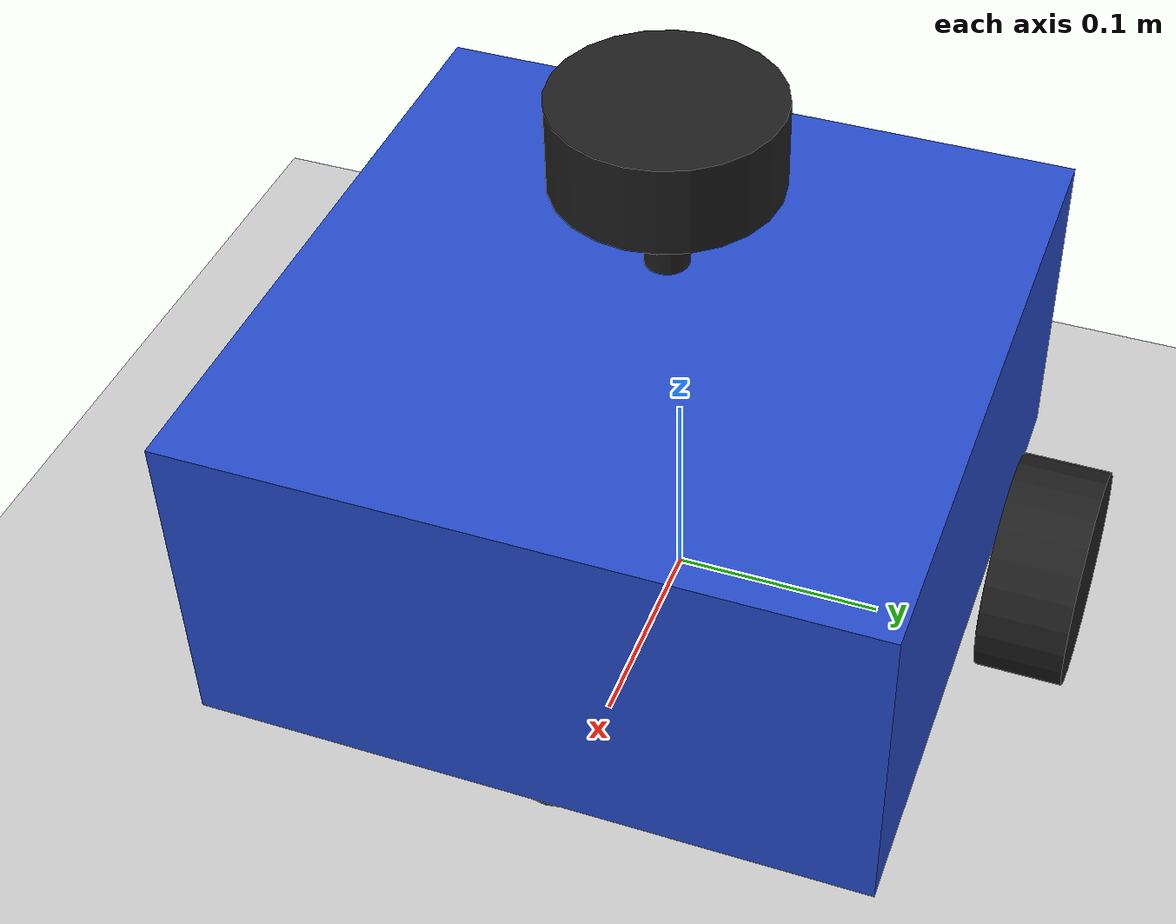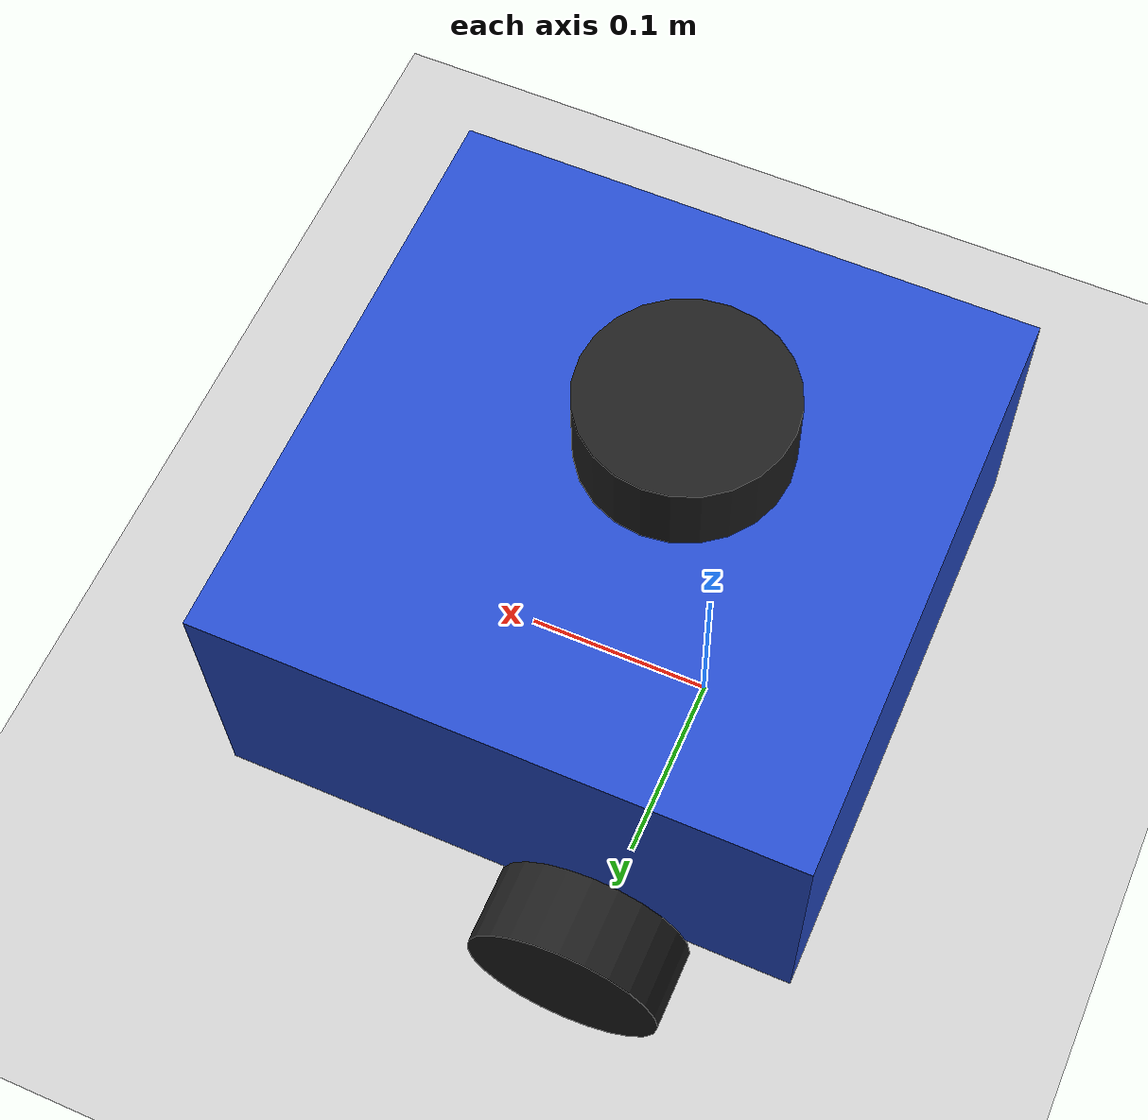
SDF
<sdf version="1.7">
 <world name="default">
  <model name="ground_plane">
   <static>1</static>
   <link name="link">
    <collision name="collision">
     <geometry><plane><normal>0 0 1</normal><size>100 100</size></plane></geometry>
     <surface><friction><ode><mu>100</mu><mu2>50</mu2></ode></friction></surface>
    </collision>
    <visual name="visual">
     <cast_shadows>0</cast_shadows>
     <geometry><plane><normal>0 0 1</normal><size>100 100</size></plane></geometry>
     <material>
      <script><uri>file://media/materials/scripts/gazebo.material</uri><name>Gazebo/Grey</name></script>
     </material>
    </visual>
   </link>
  </model>
  <model name="my_bot">
   <link name="base_link">
    <inertial>
     <pose>0.058857 0 0.083857 0 -0 0</pose>
     <mass>0.7</mass>
     <inertia>
      <ixx>0.00724782</ixx>
      <ixy>0</ixy>
      <ixz>0.00111351</ixz>
      <iyy>0.0080813</iyy>
      <iyz>0</iyz>
      <izz>0.00855849</izz>
     </inertia>
    </inertial>
    <collision name="base_link_fixed_joint_lump__chassis_collision">
     <pose>0.05 0 0.075 0 -0 0</pose>
     <geometry><box><size>0.3 0.3 0.15</size></box></geometry>
    </collision>
    <collision name="base_link_fixed_joint_lump__dolly_wheel_collision_1">
     <pose>0.14 0 0 0 -0 0</pose>
     <geometry><sphere><radius>0.05</radius></sphere></geometry>
     <surface><friction><ode><mu>0.1</mu><mu2>0.1</mu2></ode></friction></surface>
    </collision>
    <collision name="base_link_fixed_joint_lump__laser_frame_collision_2">
     <pose>0.022 0 0.212 0 -0 0</pose>
     <geometry><cylinder><length>0.04</length><radius>0.05</radius></cylinder></geometry>
    </collision>
    <visual name="base_link_fixed_joint_lump__chassis_visual">
     <pose>0.05 0 0.075 0 -0 0</pose>
     <geometry><box><size>0.3 0.3 0.15</size></box></geometry>
     <material>
      <script><name>Gazebo/Blue</name><uri>file://media/materials/scripts/gazebo.material</uri></script>
     </material>
    </visual>
    <visual name="base_link_fixed_joint_lump__dolly_wheel_visual_1">
     <pose>0.14 0 0 0 -0 0</pose>
     <geometry><sphere><radius>0.05</radius></sphere></geometry>
     <material>
      <script><name>Gazebo/Black</name><uri>file://media/materials/scripts/gazebo.material</uri></script>
     </material>
    </visual>
    <visual name="base_link_fixed_joint_lump__laser_frame_visual_2">
     <pose>0.022 0 0.212 0 -0 0</pose>
     <geometry><cylinder><length>0.04</length><radius>0.05</radius></cylinder></geometry>
     <material>
      <script><name>Gazebo/Black</name><uri>file://media/materials/scripts/gazebo.material</uri></script>
     </material>
    </visual>
    <visual name="base_link_fixed_joint_lump__laser_frame_visual_3">
     <pose>0.022 0 0.162 0 -0 0</pose>
     <geometry><cylinder><length>0.1</length><radius>0.01</radius></cylinder></geometry>
     <material>
      <script><name>Gazebo/Black</name><uri>file://media/materials/scripts/gazebo.material</uri></script>
     </material>
    </visual>
    <sensor name="lidar_sensor" type="ray">
     <visualize>1</visualize>
     <update_rate>40</update_rate>
     <ray>
      <scan>
       <horizontal>
        <samples>360</samples>
        <min_angle>-3.14</min_angle>
        <max_angle>3.14</max_angle>
        <resolution>1</resolution>
       </horizontal>
       <vertical><samples>1</samples><min_angle>0</min_angle><max_angle>0</max_angle></vertical>
      </scan>
      <range><min>0.3</min><max>12</max><resolution>0.2</resolution></range>
     </ray>
     <plugin name="laser_controller" filename="libgazebo_ros_ray_sensor.so">
      <ros><argument>~/out:=scan</argument></ros>
      <output_type>sensor_msgs/LaserScan</output_type>
      <frame_name>laser_frame</frame_name>
     </plugin>
     <pose>0.022 0 0.212 0 -0 0</pose>
    </sensor>
   </link>
   <joint name="left_wheel_joint" type="revolute">
    <pose relative_to="base_link">0 0.175 0 -1.5708 0 0</pose>
    <parent>base_link</parent>
    <child>left_wheel</child>
    <axis>
     <xyz>0 0 1</xyz>
     <limit><lower>-1e+16</lower><upper>1e+16</upper></limit>
     <dynamics><spring_reference>0</spring_reference><spring_stiffness>0</spring_stiffness></dynamics>
    </axis>
   </joint>
   <link name="left_wheel">
    <pose relative_to="left_wheel_joint">0 0 0 0 -0 0</pose>
    <inertial>
     <mass>0.1</mass>
     <inertia>
      <ixx>7.58333e-05</ixx>
      <ixy>0</ixy>
      <ixz>0</ixz>
      <iyy>7.58333e-05</iyy>
      <iyz>0</iyz>
      <izz>0.000125</izz>
     </inertia>
    </inertial>
    <collision name="left_wheel_collision">
     <geometry><cylinder><length>0.04</length><radius>0.05</radius></cylinder></geometry>
    </collision>
    <visual name="left_wheel_visual">
     <geometry><cylinder><length>0.04</length><radius>0.05</radius></cylinder></geometry>
     <material>
      <script><name>Gazebo/Black</name><uri>file://media/materials/scripts/gazebo.material</uri></script>
     </material>
    </visual>
   </link>
   <joint name="right_wheel_joint" type="revolute">
    <pose relative_to="base_link">0 -0.175 0 1.5708 -0 0</pose>
    <parent>base_link</parent>
    <child>right_wheel</child>
    <axis>
     <xyz>0 0 -1</xyz>
     <limit><lower>-1e+16</lower><upper>1e+16</upper></limit>
     <dynamics><spring_reference>0</spring_reference><spring_stiffness>0</spring_stiffness></dynamics>
    </axis>
   </joint>
   <link name="right_wheel">
    <pose relative_to="right_wheel_joint">0 0 0 0 -0 0</pose>
    <inertial>
     <mass>0.1</mass>
     <inertia>
      <ixx>7.58333e-05</ixx>
      <ixy>0</ixy>
      <ixz>0</ixz>
      <iyy>7.58333e-05</iyy>
      <iyz>0</iyz>
      <izz>0.000125</izz>
     </inertia>
    </inertial>
    <collision name="right_wheel_collision">
     <geometry><cylinder><length>0.04</length><radius>0.05</radius></cylinder></geometry>
    </collision>
    <visual name="right_wheel_visual">
     <geometry><cylinder><length>0.04</length><radius>0.05</radius></cylinder></geometry>
     <material>
      <script><name>Gazebo/Black</name><uri>file://media/materials/scripts/gazebo.material</uri></script>
     </material>
    </visual>
   </link>
   <static>0</static>
   <plugin name="diff_drive_robot_plugin" filename="libgazebo_ros_diff_drive.so">
    <left_joint>left_wheel_joint</left_joint>
    <right_joint>right_wheel_joint</right_joint>
    <wheel_separation>0.297</wheel_separation>
    <wheel_diameter>0.066</wheel_diameter>
    <max_wheel_torque>200</max_wheel_torque>
    <max_wheel_acceleration>10.0</max_wheel_acceleration>
    <odometry_frame>odom</odometry_frame>
    <robot_base_frame>base_link</robot_base_frame>
    <publish_odom>1</publish_odom>
    <publish_odom_tf>1</publish_odom_tf>
    <publish_wheel_tf>1</publish_wheel_tf>
   </plugin>
   <pose>-0.004342 -3.5e-05 0.05 -0 1e-06 0.000229</pose>
  </model>
 </world>
</sdf>
